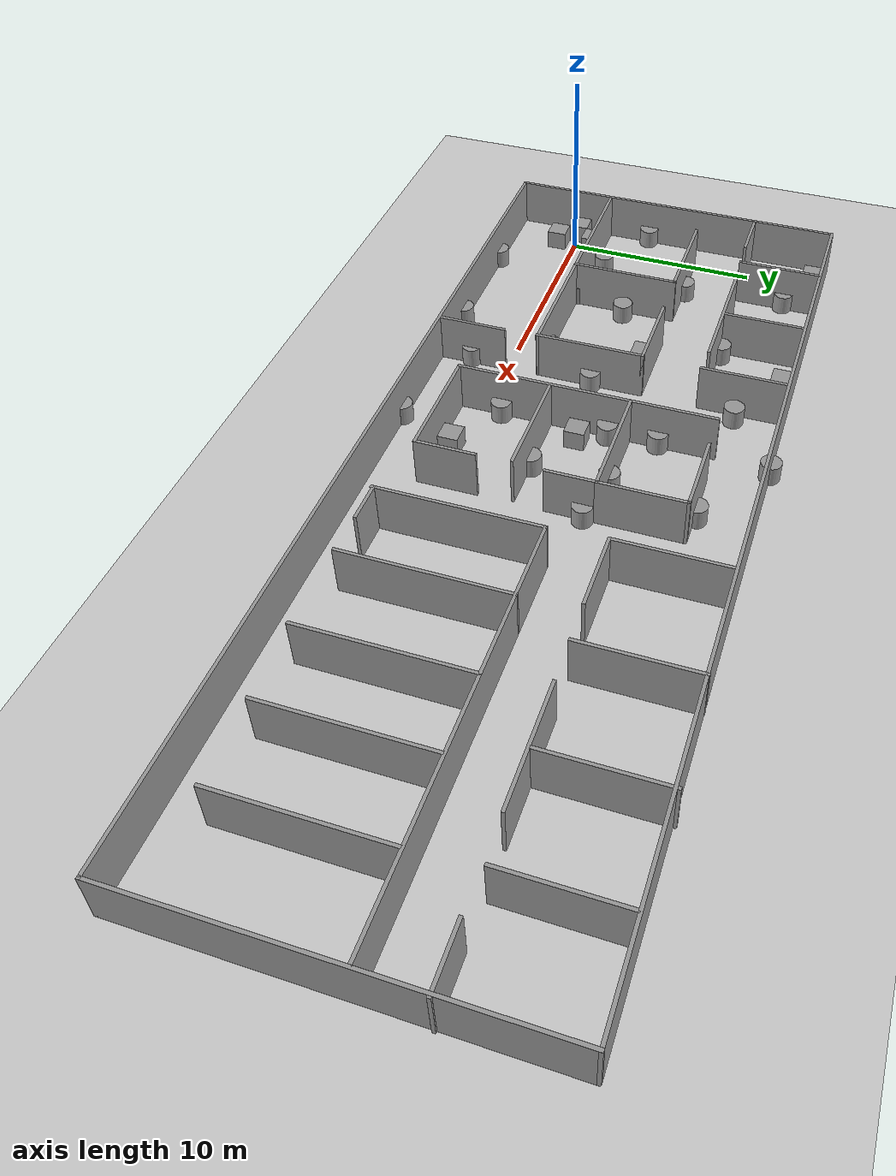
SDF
<sdf version="1.7">
 <world name="default">
  <model name="ground_plane">
   <static>1</static>
   <link name="link">
    <collision name="collision">
     <geometry><plane><normal>0 0 1</normal><size>100 100</size></plane></geometry>
     <surface>
      <contact><collide_bitmask>65535</collide_bitmask></contact>
      <friction><ode><mu>100</mu><mu2>50</mu2></ode></friction>
     </surface>
    </collision>
    <visual name="visual">
     <cast_shadows>0</cast_shadows>
     <geometry><plane><normal>0 0 1</normal><size>100 100</size></plane></geometry>
     <material>
      <script><uri>file://media/materials/scripts/gazebo.material</uri><name>Gazebo/Grey</name></script>
     </material>
    </visual>
   </link>
  </model>
  <model name="Lab1">
   <pose>20.7319 5.29666 0 0 -0 0</pose>
   <link name="Wall_1">
    <collision name="Wall_1_Collision">
     <geometry><box><size>45.25 0.15 2.5</size></box></geometry>
     <pose>0 0 1.25 0 -0 0</pose>
    </collision>
    <visual name="Wall_1_Visual">
     <pose>0 0 1.25 0 -0 0</pose>
     <geometry><box><size>45.25 0.15 2.5</size></box></geometry>
     <material>
      <script><uri>file://media/materials/scripts/gazebo.material</uri><name>Gazebo/Grey</name></script>
      <ambient>1 1 1 1</ambient>
     </material>
     <meta><layer>0</layer></meta>
    </visual>
    <pose>-0.042167 -8.8672 0 0 -0 0</pose>
   </link>
   <link name="Wall_10">
    <collision name="Wall_10_Collision">
     <geometry><box><size>6.5 0.15 2.5</size></box></geometry>
     <pose>0 0 1.25 0 -0 0</pose>
    </collision>
    <visual name="Wall_10_Visual">
     <pose>0 0 1.25 0 -0 0</pose>
     <geometry><box><size>6.5 0.15 2.5</size></box></geometry>
     <material>
      <script><uri>file://media/materials/scripts/gazebo.material</uri><name>Gazebo/Grey</name></script>
      <ambient>1 1 1 1</ambient>
     </material>
     <meta><layer>0</layer></meta>
    </visual>
    <pose>-13.6987 4.60775 0 0 -0 0</pose>
   </link>
   <link name="Wall_12">
    <collision name="Wall_12_Collision">
     <geometry><box><size>4 0.15 2.5</size></box></geometry>
     <pose>0 0 1.25 0 -0 0</pose>
    </collision>
    <visual name="Wall_12_Visual">
     <pose>0 0 1.25 0 -0 0</pose>
     <geometry><box><size>4 0.15 2.5</size></box></geometry>
     <material>
      <script><uri>file://media/materials/scripts/gazebo.material</uri><name>Gazebo/Grey</name></script>
      <ambient>1 1 1 1</ambient>
     </material>
     <meta><layer>0</layer></meta>
    </visual>
    <pose>-13.7407 6.65442 0 0 -0 1.5708</pose>
   </link>
   <link name="Wall_14">
    <collision name="Wall_14_Collision">
     <geometry><box><size>4.25 0.15 2.5</size></box></geometry>
     <pose>0 0 1.25 0 -0 0</pose>
    </collision>
    <visual name="Wall_14_Visual">
     <pose>0 0 1.25 0 -0 0</pose>
     <geometry><box><size>4.25 0.15 2.5</size></box></geometry>
     <material>
      <script><uri>file://media/materials/scripts/gazebo.material</uri><name>Gazebo/Grey</name></script>
      <ambient>1 1 1 1</ambient>
     </material>
     <meta><layer>0</layer></meta>
    </visual>
    <pose>-9.17805 6.57286 0 0 -0 -1.5708</pose>
   </link>
   <link name="Wall_16">
    <collision name="Wall_16_Collision">
     <geometry><box><size>13.4461 0.15 2.5</size></box></geometry>
     <pose>0 0 1.25 0 -0 0</pose>
    </collision>
    <visual name="Wall_16_Visual">
     <pose>0 0 1.25 0 -0 0</pose>
     <geometry><box><size>13.4461 0.15 2.5</size></box></geometry>
     <material>
      <script><uri>file://media/materials/scripts/gazebo.material</uri><name>Gazebo/Grey</name></script>
      <ambient>1 1 1 1</ambient>
     </material>
     <meta><layer>0</layer></meta>
    </visual>
    <pose>-15.853 -3.71144 0 0 -0 0.002288</pose>
   </link>
   <link name="Wall_17">
    <collision name="Wall_17_Collision">
     <geometry><box><size>5.5 0.15 2.5</size></box></geometry>
     <pose>0 0 1.25 0 -0 0</pose>
    </collision>
    <visual name="Wall_17_Visual">
     <pose>0 0 1.25 0 -0 0</pose>
     <geometry><box><size>5.5 0.15 2.5</size></box></geometry>
     <material>
      <script><uri>file://media/materials/scripts/gazebo.material</uri><name>Gazebo/Grey</name></script>
      <ambient>1 1 1 1</ambient>
     </material>
     <meta><layer>0</layer></meta>
    </visual>
    <pose>-9.20509 -1.05165 0 0 -0 1.5708</pose>
   </link>
   <link name="Wall_19">
    <collision name="Wall_19_Collision">
     <geometry><box><size>4.25 0.15 2.5</size></box></geometry>
     <pose>0 0 1.25 0 -0 0</pose>
    </collision>
    <visual name="Wall_19_Visual">
     <pose>0 0 1.25 0 -0 0</pose>
     <geometry><box><size>4.25 0.15 2.5</size></box></geometry>
     <material>
      <script><uri>file://media/materials/scripts/gazebo.material</uri><name>Gazebo/Grey</name></script>
      <ambient>1 1 1 1</ambient>
     </material>
     <meta><layer>0</layer></meta>
    </visual>
    <pose>-11.2551 1.62335 0 0 -0 3.14159</pose>
   </link>
   <link name="Wall_2">
    <collision name="Wall_2_Collision">
     <geometry><box><size>17.75 0.15 2.5</size></box></geometry>
     <pose>0 0 1.25 0 -0 0</pose>
    </collision>
    <visual name="Wall_2_Visual">
     <pose>0 0 1.25 0 -0 0</pose>
     <geometry><box><size>17.75 0.15 2.5</size></box></geometry>
     <material>
      <script><uri>file://media/materials/scripts/gazebo.material</uri><name>Gazebo/Grey</name></script>
      <ambient>1 1 1 1</ambient>
     </material>
     <meta><layer>0</layer></meta>
    </visual>
    <pose>22.5078 -0.067203 0 0 -0 1.5708</pose>
   </link>
   <link name="Wall_21">
    <collision name="Wall_21_Collision">
     <geometry><box><size>5.5 0.15 2.5</size></box></geometry>
     <pose>0 0 1.25 0 -0 0</pose>
    </collision>
    <visual name="Wall_21_Visual">
     <pose>0 0 1.25 0 -0 0</pose>
     <geometry><box><size>5.5 0.15 2.5</size></box></geometry>
     <material>
      <script><uri>file://media/materials/scripts/gazebo.material</uri><name>Gazebo/Grey</name></script>
      <ambient>1 1 1 1</ambient>
     </material>
     <meta><layer>0</layer></meta>
    </visual>
    <pose>-15.6266 -1.04817 0 0 -0 -1.5708</pose>
   </link>
   <link name="Wall_23">
    <collision name="Wall_23_Collision">
     <geometry><box><size>5.25 0.15 2.5</size></box></geometry>
     <pose>0 0 1.25 0 -0 0</pose>
    </collision>
    <visual name="Wall_23_Visual">
     <pose>0 0 1.25 0 -0 0</pose>
     <geometry><box><size>5.25 0.15 2.5</size></box></geometry>
     <material>
      <script><uri>file://media/materials/scripts/gazebo.material</uri><name>Gazebo/Grey</name></script>
      <ambient>1 1 1 1</ambient>
     </material>
     <meta><layer>0</layer></meta>
    </visual>
    <pose>-18.1766 1.62683 0 0 -0 3.14159</pose>
   </link>
   <link name="Wall_25">
    <collision name="Wall_25_Collision">
     <geometry><box><size>3.5 0.15 2.5</size></box></geometry>
     <pose>0 0 1.25 0 -0 0</pose>
    </collision>
    <visual name="Wall_25_Visual">
     <pose>0 0 1.25 0 -0 0</pose>
     <geometry><box><size>3.5 0.15 2.5</size></box></geometry>
     <material>
      <script><uri>file://media/materials/scripts/gazebo.material</uri><name>Gazebo/Grey</name></script>
      <ambient>1 1 1 1</ambient>
     </material>
     <meta><layer>0</layer></meta>
    </visual>
    <pose>-9.11721 -7.13544 0 0 -0 -1.5708</pose>
   </link>
   <link name="Wall_27">
    <collision name="Wall_27_Collision">
     <geometry><box><size>12.75 0.15 2.5</size></box></geometry>
     <pose>0 0 1.25 0 -0 0</pose>
    </collision>
    <visual name="Wall_27_Visual">
     <pose>0 0 1.25 0 -0 0</pose>
     <geometry><box><size>12.75 0.15 2.5</size></box></geometry>
     <material>
      <script><uri>file://media/materials/scripts/gazebo.material</uri><name>Gazebo/Grey</name></script>
      <ambient>1 1 1 1</ambient>
     </material>
     <meta><layer>0</layer></meta>
    </visual>
    <pose>-5.80171 -0.232211 0 0 -0 -1.5708</pose>
   </link>
   <link name="Wall_28">
    <collision name="Wall_28_Collision">
     <geometry><box><size>5.75 0.15 2.5</size></box></geometry>
     <pose>0 0 1.25 0 -0 0</pose>
    </collision>
    <visual name="Wall_28_Visual">
     <pose>0 0 1.25 0 -0 0</pose>
     <geometry><box><size>5.75 0.15 2.5</size></box></geometry>
     <material>
      <script><uri>file://media/materials/scripts/gazebo.material</uri><name>Gazebo/Grey</name></script>
      <ambient>1 1 1 1</ambient>
     </material>
     <meta><layer>0</layer></meta>
    </visual>
    <pose>-3.00171 -6.53221 0 0 -0 0</pose>
   </link>
   <link name="Wall_29">
    <collision name="Wall_29_Collision">
     <geometry><box><size>3 0.15 2.5</size></box></geometry>
     <pose>0 0 1.25 0 -0 0</pose>
    </collision>
    <visual name="Wall_29_Visual">
     <pose>0 0 1.25 0 -0 0</pose>
     <geometry><box><size>3 0.15 2.5</size></box></geometry>
     <material>
      <script><uri>file://media/materials/scripts/gazebo.material</uri><name>Gazebo/Grey</name></script>
      <ambient>1 1 1 1</ambient>
     </material>
     <meta><layer>0</layer></meta>
    </visual>
    <pose>-0.201707 -5.10721 0 0 -0 1.5708</pose>
   </link>
   <link name="Wall_3">
    <collision name="Wall_3_Collision">
     <geometry><box><size>45.25 0.15 2.5</size></box></geometry>
     <pose>0 0 1.25 0 -0 0</pose>
    </collision>
    <visual name="Wall_3_Visual">
     <pose>0 0 1.25 0 -0 0</pose>
     <geometry><box><size>45.25 0.15 2.5</size></box></geometry>
     <material>
      <script><uri>file://media/materials/scripts/gazebo.material</uri><name>Gazebo/Grey</name></script>
      <ambient>1 1 1 1</ambient>
     </material>
     <meta><layer>0</layer></meta>
    </visual>
    <pose>-0.042167 8.7328 0 0 -0 3.14159</pose>
   </link>
   <link name="Wall_31">
    <collision name="Wall_31_Collision">
     <geometry><box><size>5.5 0.15 2.5</size></box></geometry>
     <pose>0 0 1.25 0 -0 0</pose>
    </collision>
    <visual name="Wall_31_Visual">
     <pose>0 0 1.25 0 -0 0</pose>
     <geometry><box><size>5.5 0.15 2.5</size></box></geometry>
     <material>
      <script><uri>file://media/materials/scripts/gazebo.material</uri><name>Gazebo/Grey</name></script>
      <ambient>1 1 1 1</ambient>
     </material>
     <meta><layer>0</layer></meta>
    </visual>
    <pose>-3.00504 -1.96243 0 0 -0 0</pose>
   </link>
   <link name="Wall_33">
    <collision name="Wall_33_Collision">
     <geometry><box><size>2.5 0.15 2.5</size></box></geometry>
     <pose>0 0 1.25 0 -0 0</pose>
    </collision>
    <visual name="Wall_33_Visual">
     <pose>0 0 1.25 0 -0 0</pose>
     <geometry><box><size>2.5 0.15 2.5</size></box></geometry>
     <material>
      <script><uri>file://media/materials/scripts/gazebo.material</uri><name>Gazebo/Grey</name></script>
      <ambient>1 1 1 1</ambient>
     </material>
     <meta><layer>0</layer></meta>
    </visual>
    <pose>-0.17447 0.763862 0 0 -0 1.5708</pose>
   </link>
   <link name="Wall_34">
    <collision name="Wall_34_Collision">
     <geometry><box><size>5.75 0.15 2.5</size></box></geometry>
     <pose>0 0 1.25 0 -0 0</pose>
    </collision>
    <visual name="Wall_34_Visual">
     <pose>0 0 1.25 0 -0 0</pose>
     <geometry><box><size>5.75 0.15 2.5</size></box></geometry>
     <material>
      <script><uri>file://media/materials/scripts/gazebo.material</uri><name>Gazebo/Grey</name></script>
      <ambient>1 1 1 1</ambient>
     </material>
     <meta><layer>0</layer></meta>
    </visual>
    <pose>-2.97447 1.93886 0 0 -0 3.14159</pose>
   </link>
   <link name="Wall_36">
    <collision name="Wall_36_Collision">
     <geometry><box><size>4.25 0.15 2.5</size></box></geometry>
     <pose>0 0 1.25 0 -0 0</pose>
    </collision>
    <visual name="Wall_36_Visual">
     <pose>0 0 1.25 0 -0 0</pose>
     <geometry><box><size>4.25 0.15 2.5</size></box></geometry>
     <material>
      <script><uri>file://media/materials/scripts/gazebo.material</uri><name>Gazebo/Grey</name></script>
      <ambient>1 1 1 1</ambient>
     </material>
     <meta><layer>0</layer></meta>
    </visual>
    <pose>-0.17447 3.98886 0 0 -0 1.5708</pose>
   </link>
   <link name="Wall_37">
    <collision name="Wall_37_Collision">
     <geometry><box><size>4 0.15 2.5</size></box></geometry>
     <pose>0 0 1.25 0 -0 0</pose>
    </collision>
    <visual name="Wall_37_Visual">
     <pose>0 0 1.25 0 -0 0</pose>
     <geometry><box><size>4 0.15 2.5</size></box></geometry>
     <material>
      <script><uri>file://media/materials/scripts/gazebo.material</uri><name>Gazebo/Grey</name></script>
      <ambient>1 1 1 1</ambient>
     </material>
     <meta><layer>0</layer></meta>
    </visual>
    <pose>-2.09947 6.03886 0 0 -0 3.14159</pose>
   </link>
   <link name="Wall_39">
    <collision name="Wall_39_Collision">
     <geometry><box><size>5.5 0.15 2.5</size></box></geometry>
     <pose>0 0 1.25 0 -0 0</pose>
    </collision>
    <visual name="Wall_39_Visual">
     <pose>0 0 1.25 0 -0 0</pose>
     <geometry><box><size>5.5 0.15 2.5</size></box></geometry>
     <material>
      <script><uri>file://media/materials/scripts/gazebo.material</uri><name>Gazebo/Grey</name></script>
      <ambient>1 1 1 1</ambient>
     </material>
     <meta><layer>0</layer></meta>
    </visual>
    <pose>2.86164 6.04835 0 0 -0 -1.5708</pose>
   </link>
   <link name="Wall_4">
    <collision name="Wall_4_Collision">
     <geometry><box><size>17.75 0.15 2.5</size></box></geometry>
     <pose>0 0 1.25 0 -0 0</pose>
    </collision>
    <visual name="Wall_4_Visual">
     <pose>0 0 1.25 0 -0 0</pose>
     <geometry><box><size>17.75 0.15 2.5</size></box></geometry>
     <material>
      <script><uri>file://media/materials/scripts/gazebo.material</uri><name>Gazebo/Grey</name></script>
      <ambient>1 1 1 1</ambient>
     </material>
     <meta><layer>0</layer></meta>
    </visual>
    <pose>-22.5922 -0.067203 0 0 -0 -1.5708</pose>
   </link>
   <link name="Wall_40">
    <collision name="Wall_40_Collision">
     <geometry><box><size>3.75 0.15 2.5</size></box></geometry>
     <pose>0 0 1.25 0 -0 0</pose>
    </collision>
    <visual name="Wall_40_Visual">
     <pose>0 0 1.25 0 -0 0</pose>
     <geometry><box><size>3.75 0.15 2.5</size></box></geometry>
     <material>
      <script><uri>file://media/materials/scripts/gazebo.material</uri><name>Gazebo/Grey</name></script>
      <ambient>1 1 1 1</ambient>
     </material>
     <meta><layer>0</layer></meta>
    </visual>
    <pose>4.66164 3.37335 0 0 -0 0</pose>
   </link>
   <link name="Wall_42">
    <collision name="Wall_42_Collision">
     <geometry><box><size>5.5 0.15 2.5</size></box></geometry>
     <pose>0 0 1.25 0 -0 0</pose>
    </collision>
    <visual name="Wall_42_Visual">
     <pose>0 0 1.25 0 -0 0</pose>
     <geometry><box><size>5.5 0.15 2.5</size></box></geometry>
     <material>
      <script><uri>file://media/materials/scripts/gazebo.material</uri><name>Gazebo/Grey</name></script>
      <ambient>1 1 1 1</ambient>
     </material>
     <meta><layer>0</layer></meta>
    </visual>
    <pose>8.35901 6.07831 0 0 -0 1.5708</pose>
   </link>
   <link name="Wall_44">
    <collision name="Wall_44_Collision">
     <geometry><box><size>5.75 0.15 2.5</size></box></geometry>
     <pose>0 0 1.25 0 -0 0</pose>
    </collision>
    <visual name="Wall_44_Visual">
     <pose>0 0 1.25 0 -0 0</pose>
     <geometry><box><size>5.75 0.15 2.5</size></box></geometry>
     <material>
      <script><uri>file://media/materials/scripts/gazebo.material</uri><name>Gazebo/Grey</name></script>
      <ambient>1 1 1 1</ambient>
     </material>
     <meta><layer>0</layer></meta>
    </visual>
    <pose>13.2161 3.40331 0 0 -0 0</pose>
   </link>
   <link name="Wall_46">
    <collision name="Wall_46_Collision">
     <geometry><box><size>5.25 0.15 2.5</size></box></geometry>
     <pose>0 0 1.25 0 -0 0</pose>
    </collision>
    <visual name="Wall_46_Visual">
     <pose>0 0 1.25 0 -0 0</pose>
     <geometry><box><size>5.25 0.15 2.5</size></box></geometry>
     <material>
      <script><uri>file://media/materials/scripts/gazebo.material</uri><name>Gazebo/Grey</name></script>
      <ambient>1 1 1 1</ambient>
     </material>
     <meta><layer>0</layer></meta>
    </visual>
    <pose>18.0415 6.09518 0 0 -0 1.5708</pose>
   </link>
   <link name="Wall_48">
    <collision name="Wall_48_Collision">
     <geometry><box><size>2.75 0.15 2.5</size></box></geometry>
     <pose>0 0 1.25 0 -0 0</pose>
    </collision>
    <visual name="Wall_48_Visual">
     <pose>0 0 1.25 0 -0 0</pose>
     <geometry><box><size>2.75 0.15 2.5</size></box></geometry>
     <material>
      <script><uri>file://media/materials/scripts/gazebo.material</uri><name>Gazebo/Grey</name></script>
      <ambient>1 1 1 1</ambient>
     </material>
     <meta><layer>0</layer></meta>
    </visual>
    <pose>21.2922 3.36784 0 0 -0 0</pose>
   </link>
   <link name="Wall_50">
    <collision name="Wall_50_Collision">
     <geometry><box><size>5.5 0.15 2.5</size></box></geometry>
     <pose>0 0 1.25 0 -0 0</pose>
    </collision>
    <visual name="Wall_50_Visual">
     <pose>0 0 1.25 0 -0 0</pose>
     <geometry><box><size>5.5 0.15 2.5</size></box></geometry>
     <material>
      <script><uri>file://media/materials/scripts/gazebo.material</uri><name>Gazebo/Grey</name></script>
      <ambient>1 1 1 1</ambient>
     </material>
     <meta><layer>0</layer></meta>
    </visual>
    <pose>13.3599 6.1922 0 0 -0 1.5708</pose>
   </link>
   <link name="Wall_52">
    <collision name="Wall_52_Collision">
     <geometry><box><size>19.5 0.15 2.5</size></box></geometry>
     <pose>0 0 1.25 0 -0 0</pose>
    </collision>
    <visual name="Wall_52_Visual">
     <pose>0 0 1.25 0 -0 0</pose>
     <geometry><box><size>19.5 0.15 2.5</size></box></geometry>
     <material>
      <script><uri>file://media/materials/scripts/gazebo.material</uri><name>Gazebo/Grey</name></script>
      <ambient>1 1 1 1</ambient>
     </material>
     <meta><layer>0</layer></meta>
    </visual>
    <pose>12.7236 0.684137 0 0 -0 0</pose>
   </link>
   <link name="Wall_54">
    <collision name="Wall_54_Collision">
     <geometry><box><size>7.75 0.15 2.5</size></box></geometry>
     <pose>0 0 1.25 0 -0 0</pose>
    </collision>
    <visual name="Wall_54_Visual">
     <pose>0 0 1.25 0 -0 0</pose>
     <geometry><box><size>7.75 0.15 2.5</size></box></geometry>
     <material>
      <script><uri>file://media/materials/scripts/gazebo.material</uri><name>Gazebo/Grey</name></script>
      <ambient>1 1 1 1</ambient>
     </material>
     <meta><layer>0</layer></meta>
    </visual>
    <pose>18.3182 -3.15064 0 0 -0 -1.5708</pose>
   </link>
   <link name="Wall_56">
    <collision name="Wall_56_Collision">
     <geometry><box><size>7.75 0.15 2.5</size></box></geometry>
     <pose>0 0 1.25 0 -0 0</pose>
    </collision>
    <visual name="Wall_56_Visual">
     <pose>0 0 1.25 0 -0 0</pose>
     <geometry><box><size>7.75 0.15 2.5</size></box></geometry>
     <material>
      <script><uri>file://media/materials/scripts/gazebo.material</uri><name>Gazebo/Grey</name></script>
      <ambient>1 1 1 1</ambient>
     </material>
     <meta><layer>0</layer></meta>
    </visual>
    <pose>14.5269 -3.22021 0 0 -0 -1.5708</pose>
   </link>
   <link name="Wall_58">
    <collision name="Wall_58_Collision">
     <geometry><box><size>8 0.15 2.5</size></box></geometry>
     <pose>0 0 1.25 0 -0 0</pose>
    </collision>
    <visual name="Wall_58_Visual">
     <pose>0 0 1.25 0 -0 0</pose>
     <geometry><box><size>8 0.15 2.5</size></box></geometry>
     <material>
      <script><uri>file://media/materials/scripts/gazebo.material</uri><name>Gazebo/Grey</name></script>
      <ambient>1 1 1 1</ambient>
     </material>
     <meta><layer>0</layer></meta>
    </visual>
    <pose>10.9095 -3.27564 0 0 -0 -1.5708</pose>
   </link>
   <link name="Wall_6">
    <collision name="Wall_6_Collision">
     <geometry><box><size>2.75 0.15 2.5</size></box></geometry>
     <pose>0 0 1.25 0 -0 0</pose>
    </collision>
    <visual name="Wall_6_Visual">
     <pose>0 0 1.25 0 -0 0</pose>
     <geometry><box><size>2.75 0.15 2.5</size></box></geometry>
     <material>
      <script><uri>file://media/materials/scripts/gazebo.material</uri><name>Gazebo/Grey</name></script>
      <ambient>1 1 1 1</ambient>
     </material>
     <meta><layer>0</layer></meta>
    </visual>
    <pose>-21.2617 4.48608 0 0 -0 0</pose>
   </link>
   <link name="Wall_60">
    <collision name="Wall_60_Collision">
     <geometry><box><size>8 0.15 2.5</size></box></geometry>
     <pose>0 0 1.25 0 -0 0</pose>
    </collision>
    <visual name="Wall_60_Visual">
     <pose>0 0 1.25 0 -0 0</pose>
     <geometry><box><size>8 0.15 2.5</size></box></geometry>
     <material>
      <script><uri>file://media/materials/scripts/gazebo.material</uri><name>Gazebo/Grey</name></script>
      <ambient>1 1 1 1</ambient>
     </material>
     <meta><layer>0</layer></meta>
    </visual>
    <pose>6.87471 -3.24086 0 0 -0 -1.5708</pose>
   </link>
   <link name="Wall_62">
    <collision name="Wall_62_Collision">
     <geometry><box><size>8 0.15 2.5</size></box></geometry>
     <pose>0 0 1.25 0 -0 0</pose>
    </collision>
    <visual name="Wall_62_Visual">
     <pose>0 0 1.25 0 -0 0</pose>
     <geometry><box><size>8 0.15 2.5</size></box></geometry>
     <material>
      <script><uri>file://media/materials/scripts/gazebo.material</uri><name>Gazebo/Grey</name></script>
      <ambient>1 1 1 1</ambient>
     </material>
     <meta><layer>0</layer></meta>
    </visual>
    <pose>3.04863 -3.24086 0 0 -0 -1.5708</pose>
   </link>
   <link name="Wall_64">
    <collision name="Wall_64_Collision">
     <geometry><box><size>2 0.15 2.5</size></box></geometry>
     <pose>0 0 1.25 0 -0 0</pose>
    </collision>
    <visual name="Wall_64_Visual">
     <pose>0 0 1.25 0 -0 0</pose>
     <geometry><box><size>2 0.15 2.5</size></box></geometry>
     <material>
      <script><uri>file://media/materials/scripts/gazebo.material</uri><name>Gazebo/Grey</name></script>
      <ambient>1 1 1 1</ambient>
     </material>
     <meta><layer>0</layer></meta>
    </visual>
    <pose>3.98819 -7.09369 0 0 -0 3.14159</pose>
   </link>
   <link name="Wall_8">
    <collision name="Wall_8_Collision">
     <geometry><box><size>4.25 0.15 2.5</size></box></geometry>
     <pose>0 0 1.25 0 -0 0</pose>
    </collision>
    <visual name="Wall_8_Visual">
     <pose>0 0 1.25 0 -0 0</pose>
     <geometry><box><size>4.25 0.15 2.5</size></box></geometry>
     <material>
      <script><uri>file://media/materials/scripts/gazebo.material</uri><name>Gazebo/Grey</name></script>
      <ambient>1 1 1 1</ambient>
     </material>
     <meta><layer>0</layer></meta>
    </visual>
    <pose>-18.4858 6.59691 0 0 -0 1.5708</pose>
   </link>
   <static>1</static>
  </model>
  <model name="unit_box">
   <pose>-0.024443 0.998995 0.499995 -0 1e-05 0.002284</pose>
   <link name="link">
    <inertial>
     <mass>1</mass>
     <inertia>
      <ixx>0.166667</ixx>
      <ixy>0</ixy>
      <ixz>0</ixz>
      <iyy>0.166667</iyy>
      <iyz>0</iyz>
      <izz>0.166667</izz>
     </inertia>
    </inertial>
    <collision name="collision"><geometry><box><size>1 1 1</size></box></geometry></collision>
    <visual name="visual">
     <geometry><box><size>1 1 1</size></box></geometry>
     <material>
      <script><name>Gazebo/Grey</name><uri>file://media/materials/scripts/gazebo.material</uri></script>
     </material>
    </visual>
   </link>
  </model>
  <model name="unit_box_0">
   <pose>-1.04246 0.03451 0.499995 0 1e-05 0</pose>
   <link name="link">
    <inertial>
     <mass>1</mass>
     <inertia>
      <ixx>0.166667</ixx>
      <ixy>0</ixy>
      <ixz>0</ixz>
      <iyy>0.166667</iyy>
      <iyz>0</iyz>
      <izz>0.166667</izz>
     </inertia>
    </inertial>
    <collision name="collision"><geometry><box><size>1 1 1</size></box></geometry></collision>
    <visual name="visual">
     <geometry><box><size>1 1 1</size></box></geometry>
     <material>
      <script><name>Gazebo/Grey</name><uri>file://media/materials/scripts/gazebo.material</uri></script>
     </material>
    </visual>
   </link>
  </model>
  <model name="unit_box_1">
   <pose>-0.055882 -0.96791 0.499995 1e-05 -0 0</pose>
   <link name="link">
    <inertial>
     <mass>1</mass>
     <inertia>
      <ixx>0.166667</ixx>
      <ixy>0</ixy>
      <ixz>0</ixz>
      <iyy>0.166667</iyy>
      <iyz>0</iyz>
      <izz>0.166667</izz>
     </inertia>
    </inertial>
    <collision name="collision"><geometry><box><size>1 1 1</size></box></geometry></collision>
    <visual name="visual">
     <geometry><box><size>1 1 1</size></box></geometry>
     <material>
      <script><name>Gazebo/Grey</name><uri>file://media/materials/scripts/gazebo.material</uri></script>
     </material>
    </visual>
   </link>
  </model>
  <model name="unit_cylinder">
   <pose>4.75919 1.58041 0.5 0 -0 0</pose>
   <link name="link">
    <inertial>
     <mass>1</mass>
     <inertia><ixx>0.145833</ixx><ixy>0</ixy><ixz>0</ixz><iyy>0.145833</iyy><iyz>0</iyz><izz>0.125</izz></inertia>
    </inertial>
    <collision name="collision">
     <geometry><cylinder><radius>0.5</radius><length>1</length></cylinder></geometry>
    </collision>
    <visual name="visual">
     <geometry><cylinder><radius>0.5</radius><length>1</length></cylinder></geometry>
     <material>
      <script><name>Gazebo/Grey</name><uri>file://media/materials/scripts/gazebo.material</uri></script>
     </material>
    </visual>
   </link>
  </model>
  <model name="unit_cylinder_0">
   <pose>2.80886 -3.54775 0.499996 3e-06 1e-06 -0</pose>
   <link name="link">
    <inertial>
     <mass>1</mass>
     <inertia><ixx>0.145833</ixx><ixy>0</ixy><ixz>0</ixz><iyy>0.145833</iyy><iyz>0</iyz><izz>0.125</izz></inertia>
    </inertial>
    <collision name="collision">
     <geometry><cylinder><radius>0.5</radius><length>1</length></cylinder></geometry>
    </collision>
    <visual name="visual">
     <geometry><cylinder><radius>0.5</radius><length>1</length></cylinder></geometry>
     <material>
      <script><name>Gazebo/Grey</name><uri>file://media/materials/scripts/gazebo.material</uri></script>
     </material>
    </visual>
   </link>
  </model>
  <model name="unit_cylinder_1">
   <pose>8.48238 -3.51303 0.499994 -3e-06 -1e-06 -0</pose>
   <link name="link">
    <inertial>
     <mass>1</mass>
     <inertia><ixx>0.145833</ixx><ixy>0</ixy><ixz>0</ixz><iyy>0.145833</iyy><iyz>0</iyz><izz>0.125</izz></inertia>
    </inertial>
    <collision name="collision">
     <geometry><cylinder><radius>0.5</radius><length>1</length></cylinder></geometry>
    </collision>
    <visual name="visual">
     <geometry><cylinder><radius>0.5</radius><length>1</length></cylinder></geometry>
     <material>
      <script><name>Gazebo/Grey</name><uri>file://media/materials/scripts/gazebo.material</uri></script>
     </material>
    </visual>
   </link>
  </model>
  <model name="unit_cylinder_2">
   <pose>9.93981 1.6283 0.499996 3e-06 1e-06 -0</pose>
   <link name="link">
    <inertial>
     <mass>1</mass>
     <inertia><ixx>0.145833</ixx><ixy>0</ixy><ixz>0</ixz><iyy>0.145833</iyy><iyz>0</iyz><izz>0.125</izz></inertia>
    </inertial>
    <collision name="collision">
     <geometry><cylinder><radius>0.5</radius><length>1</length></cylinder></geometry>
    </collision>
    <visual name="visual">
     <geometry><cylinder><radius>0.5</radius><length>1</length></cylinder></geometry>
     <material>
      <script><name>Gazebo/Grey</name><uri>file://media/materials/scripts/gazebo.material</uri></script>
     </material>
    </visual>
   </link>
  </model>
  <model name="unit_cylinder_3">
   <pose>16.7123 -3.57275 0.499997 -5e-06 -1e-06 0</pose>
   <link name="link">
    <inertial>
     <mass>1</mass>
     <inertia><ixx>0.145833</ixx><ixy>0</ixy><ixz>0</ixz><iyy>0.145833</iyy><iyz>0</iyz><izz>0.125</izz></inertia>
    </inertial>
    <collision name="collision">
     <geometry><cylinder><radius>0.5</radius><length>1</length></cylinder></geometry>
    </collision>
    <visual name="visual">
     <geometry><cylinder><radius>0.5</radius><length>1</length></cylinder></geometry>
     <material>
      <script><name>Gazebo/Grey</name><uri>file://media/materials/scripts/gazebo.material</uri></script>
     </material>
    </visual>
   </link>
  </model>
  <model name="unit_cylinder_4">
   <pose>19.7629 -1.10703 0.499991 -1e-06 -1e-06 0</pose>
   <link name="link">
    <inertial>
     <mass>1</mass>
     <inertia><ixx>0.145833</ixx><ixy>0</ixy><ixz>0</ixz><iyy>0.145833</iyy><iyz>0</iyz><izz>0.125</izz></inertia>
    </inertial>
    <collision name="collision">
     <geometry><cylinder><radius>0.5</radius><length>1</length></cylinder></geometry>
    </collision>
    <visual name="visual">
     <geometry><cylinder><radius>0.5</radius><length>1</length></cylinder></geometry>
     <material>
      <script><name>Gazebo/Grey</name><uri>file://media/materials/scripts/gazebo.material</uri></script>
     </material>
    </visual>
   </link>
  </model>
  <model name="unit_cylinder_6">
   <pose>11.6809 4.356 0.499991 -1e-06 -1e-06 0</pose>
   <link name="link">
    <inertial>
     <mass>1</mass>
     <inertia><ixx>0.145833</ixx><ixy>0</ixy><ixz>0</ixz><iyy>0.145833</iyy><iyz>0</iyz><izz>0.125</izz></inertia>
    </inertial>
    <collision name="collision">
     <geometry><cylinder><radius>0.5</radius><length>1</length></cylinder></geometry>
    </collision>
    <visual name="visual">
     <geometry><cylinder><radius>0.5</radius><length>1</length></cylinder></geometry>
     <material>
      <script><name>Gazebo/Grey</name><uri>file://media/materials/scripts/gazebo.material</uri></script>
     </material>
    </visual>
   </link>
  </model>
  <model name="unit_cylinder_7">
   <pose>15.1715 6.22916 0.499997 -5e-06 -1e-06 0</pose>
   <link name="link">
    <inertial>
     <mass>1</mass>
     <inertia><ixx>0.145833</ixx><ixy>0</ixy><ixz>0</ixz><iyy>0.145833</iyy><iyz>0</iyz><izz>0.125</izz></inertia>
    </inertial>
    <collision name="collision">
     <geometry><cylinder><radius>0.5</radius><length>1</length></cylinder></geometry>
    </collision>
    <visual name="visual">
     <geometry><cylinder><radius>0.5</radius><length>1</length></cylinder></geometry>
     <material>
      <script><name>Gazebo/Grey</name><uri>file://media/materials/scripts/gazebo.material</uri></script>
     </material>
    </visual>
   </link>
  </model>
  <model name="unit_cylinder_8">
   <pose>15.1671 0.927672 0.499991 -1e-06 -1e-06 0</pose>
   <link name="link">
    <inertial>
     <mass>1</mass>
     <inertia><ixx>0.145833</ixx><ixy>0</ixy><ixz>0</ixz><iyy>0.145833</iyy><iyz>0</iyz><izz>0.125</izz></inertia>
    </inertial>
    <collision name="collision">
     <geometry><cylinder><radius>0.5</radius><length>1</length></cylinder></geometry>
    </collision>
    <visual name="visual">
     <geometry><cylinder><radius>0.5</radius><length>1</length></cylinder></geometry>
     <material>
      <script><name>Gazebo/Grey</name><uri>file://media/materials/scripts/gazebo.material</uri></script>
     </material>
    </visual>
   </link>
  </model>
  <model name="unit_cylinder_9">
   <pose>18.3073 7.22307 0.499997 -5e-06 -1e-06 0</pose>
   <link name="link">
    <inertial>
     <mass>1</mass>
     <inertia><ixx>0.145833</ixx><ixy>0</ixy><ixz>0</ixz><iyy>0.145833</iyy><iyz>0</iyz><izz>0.125</izz></inertia>
    </inertial>
    <collision name="collision">
     <geometry><cylinder><radius>0.5</radius><length>1</length></cylinder></geometry>
    </collision>
    <visual name="visual">
     <geometry><cylinder><radius>0.5</radius><length>1</length></cylinder></geometry>
     <material>
      <script><name>Gazebo/Grey</name><uri>file://media/materials/scripts/gazebo.material</uri></script>
     </material>
    </visual>
   </link>
  </model>
  <model name="unit_cylinder_10">
   <pose>18.2706 3.46356 0.499996 3e-06 1e-06 -0</pose>
   <link name="link">
    <inertial>
     <mass>1</mass>
     <inertia><ixx>0.145833</ixx><ixy>0</ixy><ixz>0</ixz><iyy>0.145833</iyy><iyz>0</iyz><izz>0.125</izz></inertia>
    </inertial>
    <collision name="collision">
     <geometry><cylinder><radius>0.5</radius><length>1</length></cylinder></geometry>
    </collision>
    <visual name="visual">
     <geometry><cylinder><radius>0.5</radius><length>1</length></cylinder></geometry>
     <material>
      <script><name>Gazebo/Grey</name><uri>file://media/materials/scripts/gazebo.material</uri></script>
     </material>
    </visual>
   </link>
  </model>
  <model name="unit_cylinder_11">
   <pose>7.56625 10.0611 0.499998 3e-06 -1e-06 -1e-06</pose>
   <link name="link">
    <inertial>
     <mass>1</mass>
     <inertia><ixx>0.145833</ixx><ixy>0</ixy><ixz>0</ixz><iyy>0.145833</iyy><iyz>0</iyz><izz>0.125</izz></inertia>
    </inertial>
    <collision name="collision">
     <geometry><cylinder><radius>0.5</radius><length>1</length></cylinder></geometry>
    </collision>
    <visual name="visual">
     <geometry><cylinder><radius>0.5</radius><length>1</length></cylinder></geometry>
     <material>
      <script><name>Gazebo/Grey</name><uri>file://media/materials/scripts/gazebo.material</uri></script>
     </material>
    </visual>
   </link>
  </model>
  <model name="unit_cylinder_12">
   <pose>2.80703 7.07168 0.499996 3e-06 1e-06 -0</pose>
   <link name="link">
    <inertial>
     <mass>1</mass>
     <inertia><ixx>0.145833</ixx><ixy>0</ixy><ixz>0</ixz><iyy>0.145833</iyy><iyz>0</iyz><izz>0.125</izz></inertia>
    </inertial>
    <collision name="collision">
     <geometry><cylinder><radius>0.5</radius><length>1</length></cylinder></geometry>
    </collision>
    <visual name="visual">
     <geometry><cylinder><radius>0.5</radius><length>1</length></cylinder></geometry>
     <material>
      <script><name>Gazebo/Grey</name><uri>file://media/materials/scripts/gazebo.material</uri></script>
     </material>
    </visual>
   </link>
  </model>
  <model name="unit_cylinder_13">
   <pose>2.24485 12.2965 0.499994 -3e-06 -1e-06 -0</pose>
   <link name="link">
    <inertial>
     <mass>1</mass>
     <inertia><ixx>0.145833</ixx><ixy>0</ixy><ixz>0</ixz><iyy>0.145833</iyy><iyz>0</iyz><izz>0.125</izz></inertia>
    </inertial>
    <collision name="collision">
     <geometry><cylinder><radius>0.5</radius><length>1</length></cylinder></geometry>
    </collision>
    <visual name="visual">
     <geometry><cylinder><radius>0.5</radius><length>1</length></cylinder></geometry>
     <material>
      <script><name>Gazebo/Grey</name><uri>file://media/materials/scripts/gazebo.material</uri></script>
     </material>
    </visual>
   </link>
  </model>
  <model name="unit_cylinder_14">
   <pose>-1.66528 3.91287 0.499996 3e-06 1e-06 -0</pose>
   <link name="link">
    <inertial>
     <mass>1</mass>
     <inertia><ixx>0.145833</ixx><ixy>0</ixy><ixz>0</ixz><iyy>0.145833</iyy><iyz>0</iyz><izz>0.125</izz></inertia>
    </inertial>
    <collision name="collision">
     <geometry><cylinder><radius>0.5</radius><length>1</length></cylinder></geometry>
    </collision>
    <visual name="visual">
     <geometry><cylinder><radius>0.5</radius><length>1</length></cylinder></geometry>
     <material>
      <script><name>Gazebo/Grey</name><uri>file://media/materials/scripts/gazebo.material</uri></script>
     </material>
    </visual>
   </link>
  </model>
  <model name="unit_cylinder_15">
   <pose>19.1337 11.4714 0.5 0 -0 0</pose>
   <link name="link">
    <inertial>
     <mass>1</mass>
     <inertia><ixx>0.145833</ixx><ixy>0</ixy><ixz>0</ixz><iyy>0.145833</iyy><iyz>0</iyz><izz>0.125</izz></inertia>
    </inertial>
    <collision name="collision">
     <geometry><cylinder><radius>0.5</radius><length>1</length></cylinder></geometry>
    </collision>
    <visual name="visual">
     <geometry><cylinder><radius>0.5</radius><length>1</length></cylinder></geometry>
     <material>
      <script><name>Gazebo/Grey</name><uri>file://media/materials/scripts/gazebo.material</uri></script>
     </material>
    </visual>
   </link>
  </model>
  <model name="unit_cylinder_16">
   <pose>15.4224 14.0725 0.499996 3e-06 1e-06 -0</pose>
   <link name="link">
    <inertial>
     <mass>1</mass>
     <inertia><ixx>0.145833</ixx><ixy>0</ixy><ixz>0</ixz><iyy>0.145833</iyy><iyz>0</iyz><izz>0.125</izz></inertia>
    </inertial>
    <collision name="collision">
     <geometry><cylinder><radius>0.5</radius><length>1</length></cylinder></geometry>
    </collision>
    <visual name="visual">
     <geometry><cylinder><radius>0.5</radius><length>1</length></cylinder></geometry>
     <material>
      <script><name>Gazebo/Grey</name><uri>file://media/materials/scripts/gazebo.material</uri></script>
     </material>
    </visual>
   </link>
  </model>
  <model name="unit_cylinder_18">
   <pose>20.6876 6.66355 0.499996 -3e-06 3e-06 -2e-06</pose>
   <link name="link">
    <inertial>
     <mass>1</mass>
     <inertia><ixx>0.145833</ixx><ixy>0</ixy><ixz>0</ixz><iyy>0.145833</iyy><iyz>0</iyz><izz>0.125</izz></inertia>
    </inertial>
    <collision name="collision">
     <geometry><cylinder><radius>0.5</radius><length>1</length></cylinder></geometry>
    </collision>
    <visual name="visual">
     <geometry><cylinder><radius>0.5</radius><length>1</length></cylinder></geometry>
     <material>
      <script><name>Gazebo/Grey</name><uri>file://media/materials/scripts/gazebo.material</uri></script>
     </material>
    </visual>
   </link>
  </model>
  <model name="unit_cylinder_43">
   <pose>15.029 8.65559 0.499998 3e-06 4e-06 -0</pose>
   <link name="link">
    <inertial>
     <mass>1</mass>
     <inertia><ixx>0.145833</ixx><ixy>0</ixy><ixz>0</ixz><iyy>0.145833</iyy><iyz>0</iyz><izz>0.125</izz></inertia>
    </inertial>
    <collision name="collision">
     <geometry><cylinder><radius>0.5</radius><length>1</length></cylinder></geometry>
    </collision>
    <visual name="visual">
     <geometry><cylinder><radius>0.5</radius><length>1</length></cylinder></geometry>
     <material>
      <script><name>Gazebo/Grey</name><uri>file://media/materials/scripts/gazebo.material</uri></script>
     </material>
    </visual>
   </link>
  </model>
  <model name="unit_cylinder_44">
   <pose>12.1289 11.6841 0.499996 -2e-06 -3e-06 0</pose>
   <link name="link">
    <inertial>
     <mass>1</mass>
     <inertia><ixx>0.145833</ixx><ixy>0</ixy><ixz>0</ixz><iyy>0.145833</iyy><iyz>0</iyz><izz>0.125</izz></inertia>
    </inertial>
    <collision name="collision">
     <geometry><cylinder><radius>0.5</radius><length>1</length></cylinder></geometry>
    </collision>
    <visual name="visual">
     <geometry><cylinder><radius>0.5</radius><length>1</length></cylinder></geometry>
     <material>
      <script><name>Gazebo/Grey</name><uri>file://media/materials/scripts/gazebo.material</uri></script>
     </material>
    </visual>
   </link>
  </model>
  <model name="unit_cylinder_45">
   <pose>5.68034 4.37407 0.499995 3e-06 -1e-06 0.002304</pose>
   <link name="link">
    <inertial>
     <mass>1</mass>
     <inertia><ixx>0.145833</ixx><ixy>0</ixy><ixz>0</ixz><iyy>0.145833</iyy><iyz>0</iyz><izz>0.125</izz></inertia>
    </inertial>
    <collision name="collision">
     <geometry><cylinder><radius>0.5</radius><length>1</length></cylinder></geometry>
    </collision>
    <visual name="visual">
     <geometry><cylinder><radius>0.5</radius><length>1</length></cylinder></geometry>
     <material>
      <script><name>Gazebo/Grey</name><uri>file://media/materials/scripts/gazebo.material</uri></script>
     </material>
    </visual>
   </link>
  </model>
  <model name="unit_cylinder_46">
   <pose>1.7013 2.21769 0.499998 1e-06 -0 -8.1e-05</pose>
   <link name="link">
    <inertial>
     <mass>1</mass>
     <inertia><ixx>0.145833</ixx><ixy>0</ixy><ixz>0</ixz><iyy>0.145833</iyy><iyz>0</iyz><izz>0.125</izz></inertia>
    </inertial>
    <collision name="collision">
     <geometry><cylinder><radius>0.5</radius><length>1</length></cylinder></geometry>
    </collision>
    <visual name="visual">
     <geometry><cylinder><radius>0.5</radius><length>1</length></cylinder></geometry>
     <material>
      <script><name>Gazebo/Grey</name><uri>file://media/materials/scripts/gazebo.material</uri></script>
     </material>
    </visual>
   </link>
  </model>
  <model name="unit_box_2">
   <pose>-0.230579 13.4512 0.499995 -1e-05 0 0</pose>
   <link name="link">
    <inertial>
     <mass>1</mass>
     <inertia>
      <ixx>0.166667</ixx>
      <ixy>0</ixy>
      <ixz>0</ixz>
      <iyy>0.166667</iyy>
      <iyz>0</iyz>
      <izz>0.166667</izz>
     </inertia>
    </inertial>
    <collision name="collision"><geometry><box><size>1 1 1</size></box></geometry></collision>
    <visual name="visual">
     <geometry><box><size>1 1 1</size></box></geometry>
     <material>
      <script><name>Gazebo/Grey</name><uri>file://media/materials/scripts/gazebo.material</uri></script>
     </material>
    </visual>
   </link>
  </model>
  <model name="unit_box_3">
   <pose>4.29302 4.39081 0.5 0 0 -0.016202</pose>
   <link name="link">
    <inertial>
     <mass>1</mass>
     <inertia>
      <ixx>0.166667</ixx>
      <ixy>0</ixy>
      <ixz>0</ixz>
      <iyy>0.166667</iyy>
      <iyz>0</iyz>
      <izz>0.166667</izz>
     </inertia>
    </inertial>
    <collision name="collision"><geometry><box><size>1 1 1</size></box></geometry></collision>
    <visual name="visual">
     <geometry><box><size>1 1 1</size></box></geometry>
     <material>
      <script><name>Gazebo/Grey</name><uri>file://media/materials/scripts/gazebo.material</uri></script>
     </material>
    </visual>
   </link>
  </model>
  <model name="unit_box_4">
   <pose>6.38007 12.3734 0.499995 -0 -1e-05 -1e-06</pose>
   <link name="link">
    <inertial>
     <mass>1</mass>
     <inertia>
      <ixx>0.166667</ixx>
      <ixy>0</ixy>
      <ixz>0</ixz>
      <iyy>0.166667</iyy>
      <iyz>0</iyz>
      <izz>0.166667</izz>
     </inertia>
    </inertial>
    <collision name="collision"><geometry><box><size>1 1 1</size></box></geometry></collision>
    <visual name="visual">
     <geometry><box><size>1 1 1</size></box></geometry>
     <material>
      <script><name>Gazebo/Grey</name><uri>file://media/materials/scripts/gazebo.material</uri></script>
     </material>
    </visual>
   </link>
  </model>
  <model name="unit_box_5">
   <pose>9.14125 6.34501 0.499995 -1e-05 -0 0</pose>
   <link name="link">
    <inertial>
     <mass>1</mass>
     <inertia>
      <ixx>0.166667</ixx>
      <ixy>0</ixy>
      <ixz>0</ixz>
      <iyy>0.166667</iyy>
      <iyz>0</iyz>
      <izz>0.166667</izz>
     </inertia>
    </inertial>
    <collision name="collision"><geometry><box><size>1 1 1</size></box></geometry></collision>
    <visual name="visual">
     <geometry><box><size>1 1 1</size></box></geometry>
     <material>
      <script><name>Gazebo/Grey</name><uri>file://media/materials/scripts/gazebo.material</uri></script>
     </material>
    </visual>
   </link>
  </model>
  <model name="unit_box_6">
   <pose>9.16987 13.4545 0.5 0 -0 0</pose>
   <link name="link">
    <inertial>
     <mass>1</mass>
     <inertia>
      <ixx>0.166667</ixx>
      <ixy>0</ixy>
      <ixz>0</ixz>
      <iyy>0.166667</iyy>
      <iyz>0</iyz>
      <izz>0.166667</izz>
     </inertia>
    </inertial>
    <collision name="collision"><geometry><box><size>1 1 1</size></box></geometry></collision>
    <visual name="visual">
     <geometry><box><size>1 1 1</size></box></geometry>
     <material>
      <script><name>Gazebo/Grey</name><uri>file://media/materials/scripts/gazebo.material</uri></script>
     </material>
    </visual>
   </link>
  </model>
  <model name="unit_box_7">
   <pose>15.795 4.90815 0.499995 -1e-05 -0 -0</pose>
   <link name="link">
    <inertial>
     <mass>1</mass>
     <inertia>
      <ixx>0.166667</ixx>
      <ixy>0</ixy>
      <ixz>0</ixz>
      <iyy>0.166667</iyy>
      <iyz>0</iyz>
      <izz>0.166667</izz>
     </inertia>
    </inertial>
    <collision name="collision"><geometry><box><size>1 1 1</size></box></geometry></collision>
    <visual name="visual">
     <geometry><box><size>1 1 1</size></box></geometry>
     <material>
      <script><name>Gazebo/Grey</name><uri>file://media/materials/scripts/gazebo.material</uri></script>
     </material>
    </visual>
   </link>
  </model>
  <model name="unit_box_8">
   <pose>17.9409 -0.591387 0.499995 0 1e-05 0</pose>
   <link name="link">
    <inertial>
     <mass>1</mass>
     <inertia>
      <ixx>0.166667</ixx>
      <ixy>0</ixy>
      <ixz>0</ixz>
      <iyy>0.166667</iyy>
      <iyz>0</iyz>
      <izz>0.166667</izz>
     </inertia>
    </inertial>
    <collision name="collision"><geometry><box><size>1 1 1</size></box></geometry></collision>
    <visual name="visual">
     <geometry><box><size>1 1 1</size></box></geometry>
     <material>
      <script><name>Gazebo/Grey</name><uri>file://media/materials/scripts/gazebo.material</uri></script>
     </material>
    </visual>
   </link>
  </model>
  <model name="unit_box_9">
   <pose>19.9825 9.41852 0.499995 -0 1e-05 1e-06</pose>
   <link name="link">
    <inertial>
     <mass>1</mass>
     <inertia>
      <ixx>0.166667</ixx>
      <ixy>0</ixy>
      <ixz>0</ixz>
      <iyy>0.166667</iyy>
      <iyz>0</iyz>
      <izz>0.166667</izz>
     </inertia>
    </inertial>
    <collision name="collision"><geometry><box><size>1 1 1</size></box></geometry></collision>
    <visual name="visual">
     <geometry><box><size>1 1 1</size></box></geometry>
     <material>
      <script><name>Gazebo/Grey</name><uri>file://media/materials/scripts/gazebo.material</uri></script>
     </material>
    </visual>
   </link>
  </model>
  <model name="unit_cylinder_47">
   <pose>11.521 -1.93864 0.499993 -3e-06 -4e-06 -0</pose>
   <link name="link">
    <inertial>
     <mass>1</mass>
     <inertia><ixx>0.145833</ixx><ixy>0</ixy><ixz>0</ixz><iyy>0.145833</iyy><iyz>0</iyz><izz>0.125</izz></inertia>
    </inertial>
    <collision name="collision">
     <geometry><cylinder><radius>0.5</radius><length>1</length></cylinder></geometry>
    </collision>
    <visual name="visual">
     <geometry><cylinder><radius>0.5</radius><length>1</length></cylinder></geometry>
     <material>
      <script><name>Gazebo/Grey</name><uri>file://media/materials/scripts/gazebo.material</uri></script>
     </material>
    </visual>
   </link>
  </model>
 </world>
</sdf>
